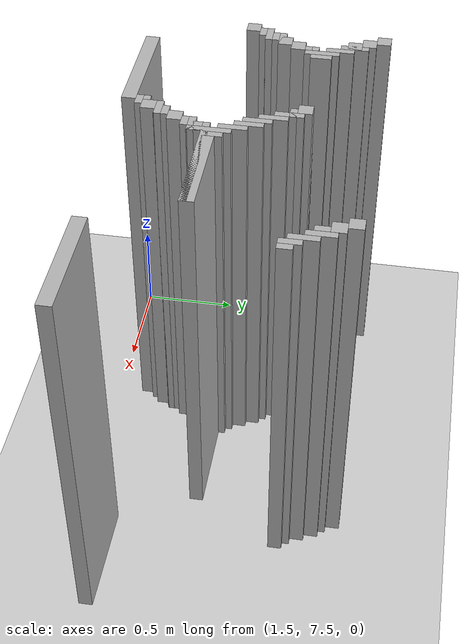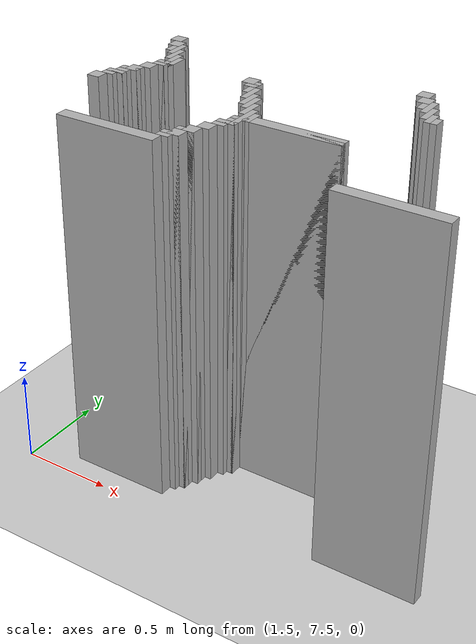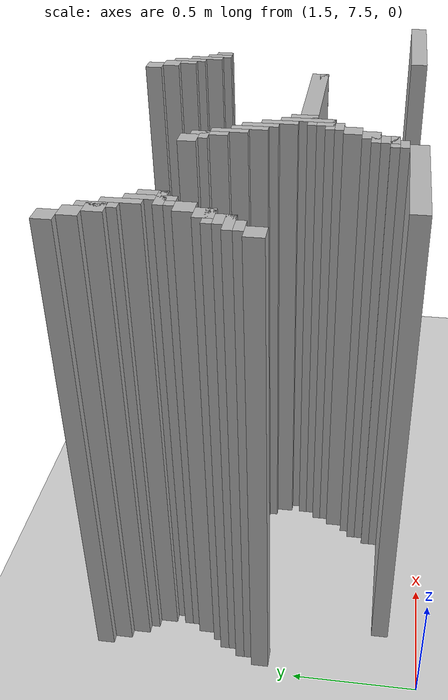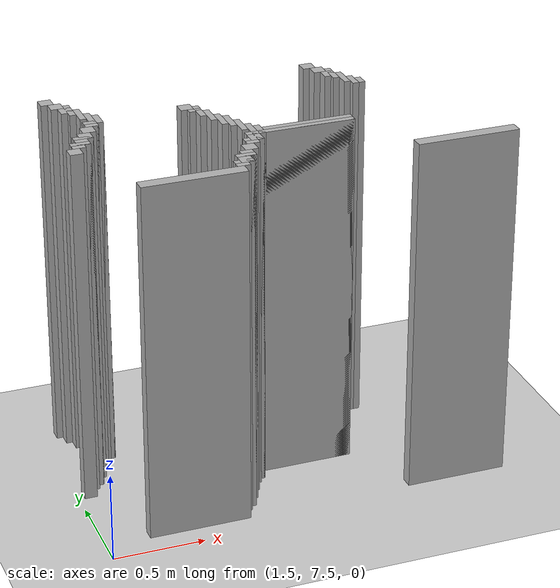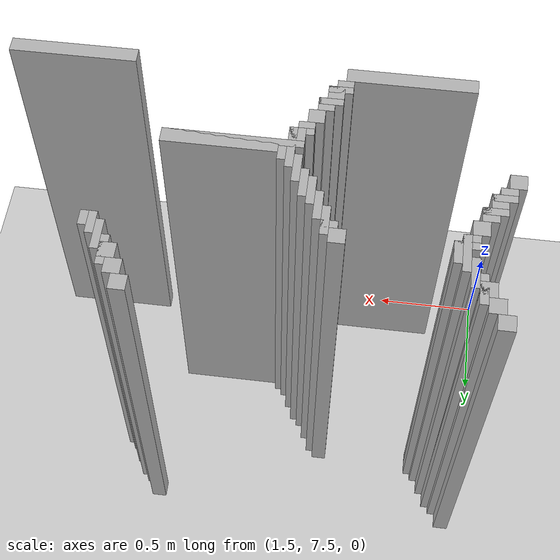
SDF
<sdf version="1.6">
 <world name="slam_world">
  <model name="ground_plane">
   <static>true</static>
   <link name="link">
    <collision name="collision">
     <geometry><plane><normal>0 0 1</normal><size>100 100</size></plane></geometry>
    </collision>
    <visual name="visual">
     <geometry><plane><normal>0 0 1</normal><size>100 100</size></plane></geometry>
     <material>
      <ambient>0.8 0.8 0.8 1</ambient>
      <diffuse>0.8 0.8 0.8 1</diffuse>
      <specular>0.8 0.8 0.8 1</specular>
     </material>
    </visual>
   </link>
  </model>
  <model name="wall_2860">
   <static>true</static>
   <pose>1.6009280742459395 8.805104408352667 1.0 0 0 0</pose>
   <link name="link">
    <collision name="collision">
     <geometry><box><size>0.06960556844547564 0.06960556844547564 2.0</size></box></geometry>
    </collision>
    <visual name="visual">
     <geometry><box><size>0.06960556844547564 0.06960556844547564 2.0</size></box></geometry>
     <material><ambient>0.5 0.5 0.5 1</ambient><diffuse>0.7 0.7 0.7 1</diffuse></material>
    </visual>
   </link>
  </model>
  <model name="wall_2861">
   <static>true</static>
   <pose>3.062645011600928 8.805104408352667 1.0 0 0 0</pose>
   <link name="link">
    <collision name="collision">
     <geometry><box><size>0.06960556844547564 0.06960556844547564 2.0</size></box></geometry>
    </collision>
    <visual name="visual">
     <geometry><box><size>0.06960556844547564 0.06960556844547564 2.0</size></box></geometry>
     <material><ambient>0.5 0.5 0.5 1</ambient><diffuse>0.7 0.7 0.7 1</diffuse></material>
    </visual>
   </link>
  </model>
  <model name="wall_2875">
   <static>true</static>
   <pose>1.6357308584686774 8.735498839907192 1.0 0 0 0</pose>
   <link name="link">
    <collision name="collision">
     <geometry><box><size>0.06960556844547564 0.06960556844547564 2.0</size></box></geometry>
    </collision>
    <visual name="visual">
     <geometry><box><size>0.06960556844547564 0.06960556844547564 2.0</size></box></geometry>
     <material><ambient>0.5 0.5 0.5 1</ambient><diffuse>0.7 0.7 0.7 1</diffuse></material>
    </visual>
   </link>
  </model>
  <model name="wall_2876">
   <static>true</static>
   <pose>3.097447795823666 8.735498839907192 1.0 0 0 0</pose>
   <link name="link">
    <collision name="collision">
     <geometry><box><size>0.06960556844547564 0.06960556844547564 2.0</size></box></geometry>
    </collision>
    <visual name="visual">
     <geometry><box><size>0.06960556844547564 0.06960556844547564 2.0</size></box></geometry>
     <material><ambient>0.5 0.5 0.5 1</ambient><diffuse>0.7 0.7 0.7 1</diffuse></material>
    </visual>
   </link>
  </model>
  <model name="wall_2890">
   <static>true</static>
   <pose>1.6879350348027842 8.665893271461716 1.0 0 0 0</pose>
   <link name="link">
    <collision name="collision">
     <geometry><box><size>0.03480278422273782 0.13921113689095127 2.0</size></box></geometry>
    </collision>
    <visual name="visual">
     <geometry><box><size>0.03480278422273782 0.13921113689095127 2.0</size></box></geometry>
     <material><ambient>0.5 0.5 0.5 1</ambient><diffuse>0.7 0.7 0.7 1</diffuse></material>
    </visual>
   </link>
  </model>
  <model name="wall_2891">
   <static>true</static>
   <pose>3.1496519721577725 8.665893271461716 1.0 0 0 0</pose>
   <link name="link">
    <collision name="collision">
     <geometry><box><size>0.03480278422273782 0.13921113689095127 2.0</size></box></geometry>
    </collision>
    <visual name="visual">
     <geometry><box><size>0.03480278422273782 0.13921113689095127 2.0</size></box></geometry>
     <material><ambient>0.5 0.5 0.5 1</ambient><diffuse>0.7 0.7 0.7 1</diffuse></material>
    </visual>
   </link>
  </model>
  <model name="wall_2904">
   <static>true</static>
   <pose>1.6705336426914152 8.665893271461716 1.0 0 0 0</pose>
   <link name="link">
    <collision name="collision">
     <geometry><box><size>0.06960556844547564 0.06960556844547564 2.0</size></box></geometry>
    </collision>
    <visual name="visual">
     <geometry><box><size>0.06960556844547564 0.06960556844547564 2.0</size></box></geometry>
     <material><ambient>0.5 0.5 0.5 1</ambient><diffuse>0.7 0.7 0.7 1</diffuse></material>
    </visual>
   </link>
  </model>
  <model name="wall_2905">
   <static>true</static>
   <pose>3.1322505800464038 8.665893271461716 1.0 0 0 0</pose>
   <link name="link">
    <collision name="collision">
     <geometry><box><size>0.06960556844547564 0.06960556844547564 2.0</size></box></geometry>
    </collision>
    <visual name="visual">
     <geometry><box><size>0.06960556844547564 0.06960556844547564 2.0</size></box></geometry>
     <material><ambient>0.5 0.5 0.5 1</ambient><diffuse>0.7 0.7 0.7 1</diffuse></material>
    </visual>
   </link>
  </model>
  <model name="wall_2916">
   <static>true</static>
   <pose>1.722737819025522 8.596287703016241 1.0 0 0 0</pose>
   <link name="link">
    <collision name="collision">
     <geometry><box><size>0.03480278422273782 0.13921113689095127 2.0</size></box></geometry>
    </collision>
    <visual name="visual">
     <geometry><box><size>0.03480278422273782 0.13921113689095127 2.0</size></box></geometry>
     <material><ambient>0.5 0.5 0.5 1</ambient><diffuse>0.7 0.7 0.7 1</diffuse></material>
    </visual>
   </link>
  </model>
  <model name="wall_2917">
   <static>true</static>
   <pose>3.1844547563805103 8.596287703016241 1.0 0 0 0</pose>
   <link name="link">
    <collision name="collision">
     <geometry><box><size>0.03480278422273782 0.13921113689095127 2.0</size></box></geometry>
    </collision>
    <visual name="visual">
     <geometry><box><size>0.03480278422273782 0.13921113689095127 2.0</size></box></geometry>
     <material><ambient>0.5 0.5 0.5 1</ambient><diffuse>0.7 0.7 0.7 1</diffuse></material>
    </visual>
   </link>
  </model>
  <model name="wall_2937">
   <static>true</static>
   <pose>1.75754060324826 8.509280742459396 1.0 0 0 0</pose>
   <link name="link">
    <collision name="collision">
     <geometry><box><size>0.03480278422273782 0.17401392111368907 2.0</size></box></geometry>
    </collision>
    <visual name="visual">
     <geometry><box><size>0.03480278422273782 0.17401392111368907 2.0</size></box></geometry>
     <material><ambient>0.5 0.5 0.5 1</ambient><diffuse>0.7 0.7 0.7 1</diffuse></material>
    </visual>
   </link>
  </model>
  <model name="wall_2938">
   <static>true</static>
   <pose>3.219257540603248 8.544083526682135 1.0 0 0 0</pose>
   <link name="link">
    <collision name="collision">
     <geometry><box><size>0.03480278422273782 0.10440835266821345 2.0</size></box></geometry>
    </collision>
    <visual name="visual">
     <geometry><box><size>0.03480278422273782 0.10440835266821345 2.0</size></box></geometry>
     <material><ambient>0.5 0.5 0.5 1</ambient><diffuse>0.7 0.7 0.7 1</diffuse></material>
    </visual>
   </link>
  </model>
  <model name="wall_2952">
   <static>true</static>
   <pose>1.7923433874709975 8.509280742459396 1.0 0 0 0</pose>
   <link name="link">
    <collision name="collision">
     <geometry><box><size>0.03480278422273782 0.10440835266821345 2.0</size></box></geometry>
    </collision>
    <visual name="visual">
     <geometry><box><size>0.03480278422273782 0.10440835266821345 2.0</size></box></geometry>
     <material><ambient>0.5 0.5 0.5 1</ambient><diffuse>0.7 0.7 0.7 1</diffuse></material>
    </visual>
   </link>
  </model>
  <model name="wall_2953">
   <static>true</static>
   <pose>3.254060324825986 8.526682134570766 1.0 0 0 0</pose>
   <link name="link">
    <collision name="collision">
     <geometry><box><size>0.03480278422273782 0.06960556844547564 2.0</size></box></geometry>
    </collision>
    <visual name="visual">
     <geometry><box><size>0.03480278422273782 0.06960556844547564 2.0</size></box></geometry>
     <material><ambient>0.5 0.5 0.5 1</ambient><diffuse>0.7 0.7 0.7 1</diffuse></material>
    </visual>
   </link>
  </model>
  <model name="wall_2966">
   <static>true</static>
   <pose>2.262180974477958 8.491879350348027 1.0 0 0 0</pose>
   <link name="link">
    <collision name="collision">
     <geometry><box><size>0.06960556844547564 0.06960556844547564 2.0</size></box></geometry>
    </collision>
    <visual name="visual">
     <geometry><box><size>0.06960556844547564 0.06960556844547564 2.0</size></box></geometry>
     <material><ambient>0.5 0.5 0.5 1</ambient><diffuse>0.7 0.7 0.7 1</diffuse></material>
    </visual>
   </link>
  </model>
  <model name="wall_2976">
   <static>true</static>
   <pose>1.75754060324826 8.474477958236658 1.0 0 0 0</pose>
   <link name="link">
    <collision name="collision">
     <geometry><box><size>0.10440835266821345 0.03480278422273782 2.0</size></box></geometry>
    </collision>
    <visual name="visual">
     <geometry><box><size>0.10440835266821345 0.03480278422273782 2.0</size></box></geometry>
     <material><ambient>0.5 0.5 0.5 1</ambient><diffuse>0.7 0.7 0.7 1</diffuse></material>
    </visual>
   </link>
  </model>
  <model name="wall_2977">
   <static>true</static>
   <pose>2.3143851508120648 8.422273781902552 1.0 0 0 0</pose>
   <link name="link">
    <collision name="collision">
     <geometry><box><size>0.03480278422273782 0.13921113689095127 2.0</size></box></geometry>
    </collision>
    <visual name="visual">
     <geometry><box><size>0.03480278422273782 0.13921113689095127 2.0</size></box></geometry>
     <material><ambient>0.5 0.5 0.5 1</ambient><diffuse>0.7 0.7 0.7 1</diffuse></material>
    </visual>
   </link>
  </model>
  <model name="wall_2987">
   <static>true</static>
   <pose>1.740139211136891 8.43967517401392 1.0 0 0 0</pose>
   <link name="link">
    <collision name="collision">
     <geometry><box><size>0.06960556844547564 0.03480278422273782 2.0</size></box></geometry>
    </collision>
    <visual name="visual">
     <geometry><box><size>0.06960556844547564 0.03480278422273782 2.0</size></box></geometry>
     <material><ambient>0.5 0.5 0.5 1</ambient><diffuse>0.7 0.7 0.7 1</diffuse></material>
    </visual>
   </link>
  </model>
  <model name="wall_2988">
   <static>true</static>
   <pose>2.296983758700696 8.43967517401392 1.0 0 0 0</pose>
   <link name="link">
    <collision name="collision">
     <geometry><box><size>0.06960556844547564 0.03480278422273782 2.0</size></box></geometry>
    </collision>
    <visual name="visual">
     <geometry><box><size>0.06960556844547564 0.03480278422273782 2.0</size></box></geometry>
     <material><ambient>0.5 0.5 0.5 1</ambient><diffuse>0.7 0.7 0.7 1</diffuse></material>
    </visual>
   </link>
  </model>
  <model name="wall_3000">
   <static>true</static>
   <pose>1.705336426914153 8.387470997679815 1.0 0 0 0</pose>
   <link name="link">
    <collision name="collision">
     <geometry><box><size>0.06960556844547564 0.06960556844547564 2.0</size></box></geometry>
    </collision>
    <visual name="visual">
     <geometry><box><size>0.06960556844547564 0.06960556844547564 2.0</size></box></geometry>
     <material><ambient>0.5 0.5 0.5 1</ambient><diffuse>0.7 0.7 0.7 1</diffuse></material>
    </visual>
   </link>
  </model>
  <model name="wall_3001">
   <static>true</static>
   <pose>2.3491879350348026 8.352668213457076 1.0 0 0 0</pose>
   <link name="link">
    <collision name="collision">
     <geometry><box><size>0.03480278422273782 0.13921113689095127 2.0</size></box></geometry>
    </collision>
    <visual name="visual">
     <geometry><box><size>0.03480278422273782 0.13921113689095127 2.0</size></box></geometry>
     <material><ambient>0.5 0.5 0.5 1</ambient><diffuse>0.7 0.7 0.7 1</diffuse></material>
    </visual>
   </link>
  </model>
  <model name="wall_3013">
   <static>true</static>
   <pose>1.6705336426914152 8.317865429234338 1.0 0 0 0</pose>
   <link name="link">
    <collision name="collision">
     <geometry><box><size>0.06960556844547564 0.06960556844547564 2.0</size></box></geometry>
    </collision>
    <visual name="visual">
     <geometry><box><size>0.06960556844547564 0.06960556844547564 2.0</size></box></geometry>
     <material><ambient>0.5 0.5 0.5 1</ambient><diffuse>0.7 0.7 0.7 1</diffuse></material>
    </visual>
   </link>
  </model>
  <model name="wall_3014">
   <static>true</static>
   <pose>2.3839907192575405 8.2830626450116 1.0 0 0 0</pose>
   <link name="link">
    <collision name="collision">
     <geometry><box><size>0.03480278422273782 0.13921113689095127 2.0</size></box></geometry>
    </collision>
    <visual name="visual">
     <geometry><box><size>0.03480278422273782 0.13921113689095127 2.0</size></box></geometry>
     <material><ambient>0.5 0.5 0.5 1</ambient><diffuse>0.7 0.7 0.7 1</diffuse></material>
    </visual>
   </link>
  </model>
  <model name="wall_3026">
   <static>true</static>
   <pose>1.6531322505800463 8.30046403712297 1.0 0 0 0</pose>
   <link name="link">
    <collision name="collision">
     <geometry><box><size>0.10440835266821345 0.03480278422273782 2.0</size></box></geometry>
    </collision>
    <visual name="visual">
     <geometry><box><size>0.10440835266821345 0.03480278422273782 2.0</size></box></geometry>
     <material><ambient>0.5 0.5 0.5 1</ambient><diffuse>0.7 0.7 0.7 1</diffuse></material>
    </visual>
   </link>
  </model>
  <model name="wall_3027">
   <static>true</static>
   <pose>2.4187935034802783 8.248259860788863 1.0 0 0 0</pose>
   <link name="link">
    <collision name="collision">
     <geometry><box><size>0.03480278422273782 0.13921113689095127 2.0</size></box></geometry>
    </collision>
    <visual name="visual">
     <geometry><box><size>0.03480278422273782 0.13921113689095127 2.0</size></box></geometry>
     <material><ambient>0.5 0.5 0.5 1</ambient><diffuse>0.7 0.7 0.7 1</diffuse></material>
    </visual>
   </link>
  </model>
  <model name="wall_3039">
   <static>true</static>
   <pose>1.6357308584686774 8.248259860788863 1.0 0 0 0</pose>
   <link name="link">
    <collision name="collision">
     <geometry><box><size>0.06960556844547564 0.06960556844547564 2.0</size></box></geometry>
    </collision>
    <visual name="visual">
     <geometry><box><size>0.06960556844547564 0.06960556844547564 2.0</size></box></geometry>
     <material><ambient>0.5 0.5 0.5 1</ambient><diffuse>0.7 0.7 0.7 1</diffuse></material>
    </visual>
   </link>
  </model>
  <model name="wall_3050">
   <static>true</static>
   <pose>1.6183294663573085 8.230858468677495 1.0 0 0 0</pose>
   <link name="link">
    <collision name="collision">
     <geometry><box><size>0.10440835266821345 0.03480278422273782 2.0</size></box></geometry>
    </collision>
    <visual name="visual">
     <geometry><box><size>0.10440835266821345 0.03480278422273782 2.0</size></box></geometry>
     <material><ambient>0.5 0.5 0.5 1</ambient><diffuse>0.7 0.7 0.7 1</diffuse></material>
    </visual>
   </link>
  </model>
  <model name="wall_3051">
   <static>true</static>
   <pose>2.453596287703016 8.178654292343387 1.0 0 0 0</pose>
   <link name="link">
    <collision name="collision">
     <geometry><box><size>0.03480278422273782 0.13921113689095127 2.0</size></box></geometry>
    </collision>
    <visual name="visual">
     <geometry><box><size>0.03480278422273782 0.13921113689095127 2.0</size></box></geometry>
     <material><ambient>0.5 0.5 0.5 1</ambient><diffuse>0.7 0.7 0.7 1</diffuse></material>
    </visual>
   </link>
  </model>
  <model name="wall_3063">
   <static>true</static>
   <pose>1.6009280742459395 8.196055684454755 1.0 0 0 0</pose>
   <link name="link">
    <collision name="collision">
     <geometry><box><size>0.06960556844547564 0.03480278422273782 2.0</size></box></geometry>
    </collision>
    <visual name="visual">
     <geometry><box><size>0.06960556844547564 0.03480278422273782 2.0</size></box></geometry>
     <material><ambient>0.5 0.5 0.5 1</ambient><diffuse>0.7 0.7 0.7 1</diffuse></material>
    </visual>
   </link>
  </model>
  <model name="wall_3072">
   <static>true</static>
   <pose>1.5661252900232019 8.14385150812065 1.0 0 0 0</pose>
   <link name="link">
    <collision name="collision">
     <geometry><box><size>0.06960556844547564 0.06960556844547564 2.0</size></box></geometry>
    </collision>
    <visual name="visual">
     <geometry><box><size>0.06960556844547564 0.06960556844547564 2.0</size></box></geometry>
     <material><ambient>0.5 0.5 0.5 1</ambient><diffuse>0.7 0.7 0.7 1</diffuse></material>
    </visual>
   </link>
  </model>
  <model name="wall_3073">
   <static>true</static>
   <pose>2.488399071925754 8.074245939675174 1.0 0 0 0</pose>
   <link name="link">
    <collision name="collision">
     <geometry><box><size>0.03480278422273782 0.2088167053364269 2.0</size></box></geometry>
    </collision>
    <visual name="visual">
     <geometry><box><size>0.03480278422273782 0.2088167053364269 2.0</size></box></geometry>
     <material><ambient>0.5 0.5 0.5 1</ambient><diffuse>0.7 0.7 0.7 1</diffuse></material>
    </visual>
   </link>
  </model>
  <model name="wall_3085">
   <static>true</static>
   <pose>2.523201856148492 8.091647331786543 1.0 0 0 0</pose>
   <link name="link">
    <collision name="collision">
     <geometry><box><size>0.03480278422273782 0.10440835266821345 2.0</size></box></geometry>
    </collision>
    <visual name="visual">
     <geometry><box><size>0.03480278422273782 0.10440835266821345 2.0</size></box></geometry>
     <material><ambient>0.5 0.5 0.5 1</ambient><diffuse>0.7 0.7 0.7 1</diffuse></material>
    </visual>
   </link>
  </model>
  <model name="wall_3098">
   <static>true</static>
   <pose>2.784222737819025 8.074245939675174 1.0 0 0 0</pose>
   <link name="link">
    <collision name="collision">
     <geometry><box><size>0.4872389791183295 0.06960556844547564 2.0</size></box></geometry>
    </collision>
    <visual name="visual">
     <geometry><box><size>0.4872389791183295 0.06960556844547564 2.0</size></box></geometry>
     <material><ambient>0.5 0.5 0.5 1</ambient><diffuse>0.7 0.7 0.7 1</diffuse></material>
    </visual>
   </link>
  </model>
  <model name="wall_3108">
   <static>true</static>
   <pose>2.7320185614849186 8.056844547563804 1.0 0 0 0</pose>
   <link name="link">
    <collision name="collision">
     <geometry><box><size>0.5916473317865429 0.03480278422273782 2.0</size></box></geometry>
    </collision>
    <visual name="visual">
     <geometry><box><size>0.5916473317865429 0.03480278422273782 2.0</size></box></geometry>
     <material><ambient>0.5 0.5 0.5 1</ambient><diffuse>0.7 0.7 0.7 1</diffuse></material>
    </visual>
   </link>
  </model>
  <model name="wall_3115">
   <static>true</static>
   <pose>2.470997679814385 8.004640371229698 1.0 0 0 0</pose>
   <link name="link">
    <collision name="collision">
     <geometry><box><size>0.06960556844547564 0.06960556844547564 2.0</size></box></geometry>
    </collision>
    <visual name="visual">
     <geometry><box><size>0.06960556844547564 0.06960556844547564 2.0</size></box></geometry>
     <material><ambient>0.5 0.5 0.5 1</ambient><diffuse>0.7 0.7 0.7 1</diffuse></material>
    </visual>
   </link>
  </model>
  <model name="wall_3124">
   <static>true</static>
   <pose>2.453596287703016 7.987238979118329 1.0 0 0 0</pose>
   <link name="link">
    <collision name="collision">
     <geometry><box><size>0.10440835266821345 0.03480278422273782 2.0</size></box></geometry>
    </collision>
    <visual name="visual">
     <geometry><box><size>0.10440835266821345 0.03480278422273782 2.0</size></box></geometry>
     <material><ambient>0.5 0.5 0.5 1</ambient><diffuse>0.7 0.7 0.7 1</diffuse></material>
    </visual>
   </link>
  </model>
  <model name="wall_3132">
   <static>true</static>
   <pose>2.436194895591647 7.952436194895592 1.0 0 0 0</pose>
   <link name="link">
    <collision name="collision">
     <geometry><box><size>0.06960556844547564 0.03480278422273782 2.0</size></box></geometry>
    </collision>
    <visual name="visual">
     <geometry><box><size>0.06960556844547564 0.03480278422273782 2.0</size></box></geometry>
     <material><ambient>0.5 0.5 0.5 1</ambient><diffuse>0.7 0.7 0.7 1</diffuse></material>
    </visual>
   </link>
  </model>
  <model name="wall_3138">
   <static>true</static>
   <pose>2.4013921113689096 7.900232018561485 1.0 0 0 0</pose>
   <link name="link">
    <collision name="collision">
     <geometry><box><size>0.06960556844547564 0.06960556844547564 2.0</size></box></geometry>
    </collision>
    <visual name="visual">
     <geometry><box><size>0.06960556844547564 0.06960556844547564 2.0</size></box></geometry>
     <material><ambient>0.5 0.5 0.5 1</ambient><diffuse>0.7 0.7 0.7 1</diffuse></material>
    </visual>
   </link>
  </model>
  <model name="wall_3147">
   <static>true</static>
   <pose>2.3665893271461718 7.830626450116009 1.0 0 0 0</pose>
   <link name="link">
    <collision name="collision">
     <geometry><box><size>0.06960556844547564 0.06960556844547564 2.0</size></box></geometry>
    </collision>
    <visual name="visual">
     <geometry><box><size>0.06960556844547564 0.06960556844547564 2.0</size></box></geometry>
     <material><ambient>0.5 0.5 0.5 1</ambient><diffuse>0.7 0.7 0.7 1</diffuse></material>
    </visual>
   </link>
  </model>
  <model name="wall_3156">
   <static>true</static>
   <pose>2.3491879350348026 7.81322505800464 1.0 0 0 0</pose>
   <link name="link">
    <collision name="collision">
     <geometry><box><size>0.10440835266821345 0.03480278422273782 2.0</size></box></geometry>
    </collision>
    <visual name="visual">
     <geometry><box><size>0.10440835266821345 0.03480278422273782 2.0</size></box></geometry>
     <material><ambient>0.5 0.5 0.5 1</ambient><diffuse>0.7 0.7 0.7 1</diffuse></material>
    </visual>
   </link>
  </model>
  <model name="wall_3164">
   <static>true</static>
   <pose>2.331786542923434 7.761020881670533 1.0 0 0 0</pose>
   <link name="link">
    <collision name="collision">
     <geometry><box><size>0.06960556844547564 0.06960556844547564 2.0</size></box></geometry>
    </collision>
    <visual name="visual">
     <geometry><box><size>0.06960556844547564 0.06960556844547564 2.0</size></box></geometry>
     <material><ambient>0.5 0.5 0.5 1</ambient><diffuse>0.7 0.7 0.7 1</diffuse></material>
    </visual>
   </link>
  </model>
  <model name="wall_3168">
   <static>true</static>
   <pose>2.3143851508120648 7.743619489559165 1.0 0 0 0</pose>
   <link name="link">
    <collision name="collision">
     <geometry><box><size>0.10440835266821345 0.03480278422273782 2.0</size></box></geometry>
    </collision>
    <visual name="visual">
     <geometry><box><size>0.10440835266821345 0.03480278422273782 2.0</size></box></geometry>
     <material><ambient>0.5 0.5 0.5 1</ambient><diffuse>0.7 0.7 0.7 1</diffuse></material>
    </visual>
   </link>
  </model>
  <model name="wall_3176">
   <static>true</static>
   <pose>2.296983758700696 7.708816705336426 1.0 0 0 0</pose>
   <link name="link">
    <collision name="collision">
     <geometry><box><size>0.06960556844547564 0.03480278422273782 2.0</size></box></geometry>
    </collision>
    <visual name="visual">
     <geometry><box><size>0.06960556844547564 0.03480278422273782 2.0</size></box></geometry>
     <material><ambient>0.5 0.5 0.5 1</ambient><diffuse>0.7 0.7 0.7 1</diffuse></material>
    </visual>
   </link>
  </model>
  <model name="wall_3180">
   <static>true</static>
   <pose>2.0185614849187936 7.65661252900232 1.0 0 0 0</pose>
   <link name="link">
    <collision name="collision">
     <geometry><box><size>0.5568445475638051 0.06960556844547564 2.0</size></box></geometry>
    </collision>
    <visual name="visual">
     <geometry><box><size>0.5568445475638051 0.06960556844547564 2.0</size></box></geometry>
     <material><ambient>0.5 0.5 0.5 1</ambient><diffuse>0.7 0.7 0.7 1</diffuse></material>
    </visual>
   </link>
  </model>
  <model name="wall_3181">
   <static>true</static>
   <pose>3.480278422273782 7.65661252900232 1.0 0 0 0</pose>
   <link name="link">
    <collision name="collision">
     <geometry><box><size>0.5568445475638051 0.06960556844547564 2.0</size></box></geometry>
    </collision>
    <visual name="visual">
     <geometry><box><size>0.5568445475638051 0.06960556844547564 2.0</size></box></geometry>
     <material><ambient>0.5 0.5 0.5 1</ambient><diffuse>0.7 0.7 0.7 1</diffuse></material>
    </visual>
   </link>
  </model>
 </world>
</sdf>
